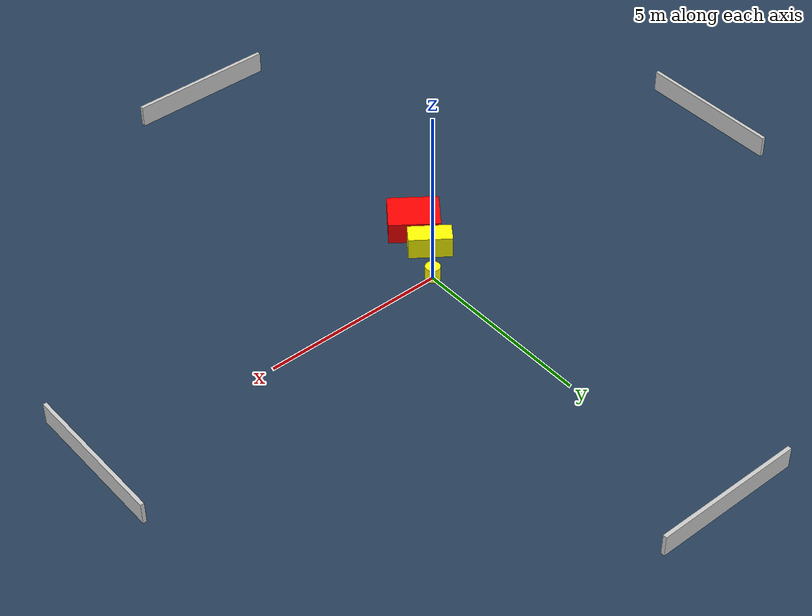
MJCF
<?xml version="1.0" ?>
<mujoco model="generated_environment">
  <option timestep="0.01" integrator="RK4" cone="elliptic"/>
  <default>
    <geom density="1"/>
  </default>
  <asset>
    <texture builtin="gradient" height="3072" name="skybox" rgb1="0.3 0.5 0.7" rgb2="0 0 0" type="skybox" width="512"/>
    <texture builtin="checker" height="300" name="groundplane" rgb1="0.2 0.3 0.4" rgb2="0.1 0.2 0.3" type="2d" width="300"/>
    <material name="groundplane" reflectance="0.2" texrepeat="5 5" texture="groundplane"/>
  </asset>
  <worldbody>
    <light dir="0 0 -1" directional="true" pos="0 0 1.5"/>
    <geom condim="3" friction="0.5 0.005 0.001" material="groundplane" name="floor" pos="0 0 0" size="0 0 0.05" type="plane"/>
    <body name="walls">
      <geom name="wall_1" condim="4" pos="-10.0 0.0 0.3" rgba="0.800000011920929 0.800000011920929 0.800000011920929 1.0" size="0.05 2.0 0.3" type="box"/>
      <geom name="wall_2" condim="4" pos="10.0 0.0 0.3" rgba="0.800000011920929 0.800000011920929 0.800000011920929 1.0" size="0.05 2.0 0.3" type="box"/>
      <geom name="wall_3" condim="4" pos="0.0 -10.0 0.3" rgba="0.800000011920929 0.800000011920929 0.800000011920929 1.0" size="2.0 0.05 0.3" type="box"/>
      <geom name="wall_4" condim="4" pos="0.0 10.0 0.3" rgba="0.800000011920929 0.800000011920929 0.800000011920929 1.0" size="2.0 0.05 0.3" type="box"/>
    </body>
    <body name="robot">
      <joint name="joint_x" type="slide" pos="0 0 0" axis="1 0 0"/>
      <joint name="joint_y" type="slide" pos="0 0 0" axis="0 1 0"/>
      <geom name="robot" type="cylinder" pos="0.0 0.0 0.2" size="0.2 0.2 0.0" mass="5.0" friction="1.0 0.005 0.0001" condim="4" rgba="1.0 1.0 0.0 1.0"/>
    </body>
    <body name="obstacle_1_movable">
      <geom name="obstacle_1_movable" condim="4" pos="-0.6303058833365662 -0.853609983573011 0.3" euler="0 0 323.41342157735676" friction="0.0 0.005 0.001" rgba="1.0 1.0 0.0 1.0" size="0.5712269873620188 0.27666411195377066 0.3" type="box" mass="0.1"/>
      <joint type="free"/>
    </body>
    <body name="obstacle_2_static">
      <geom name="obstacle_2_static" condim="4" pos="-0.8667183182872302 -1.7801827133219712 0.3" euler="0 0 322.9002081502088" friction="0.0 0.005 0.001" rgba="1.0 0.0 0.0 1.0" size="0.6794988063746576 0.5483306592658846 0.3" type="box"/>
    </body>
  </worldbody>
  <actuator>
    <motor name="actuator_x" joint="joint_x" gear="1" ctrlrange="-1 1"/>
    <motor name="actuator_y" joint="joint_y" gear="1" ctrlrange="-1 1"/>
  </actuator>
</mujoco>
